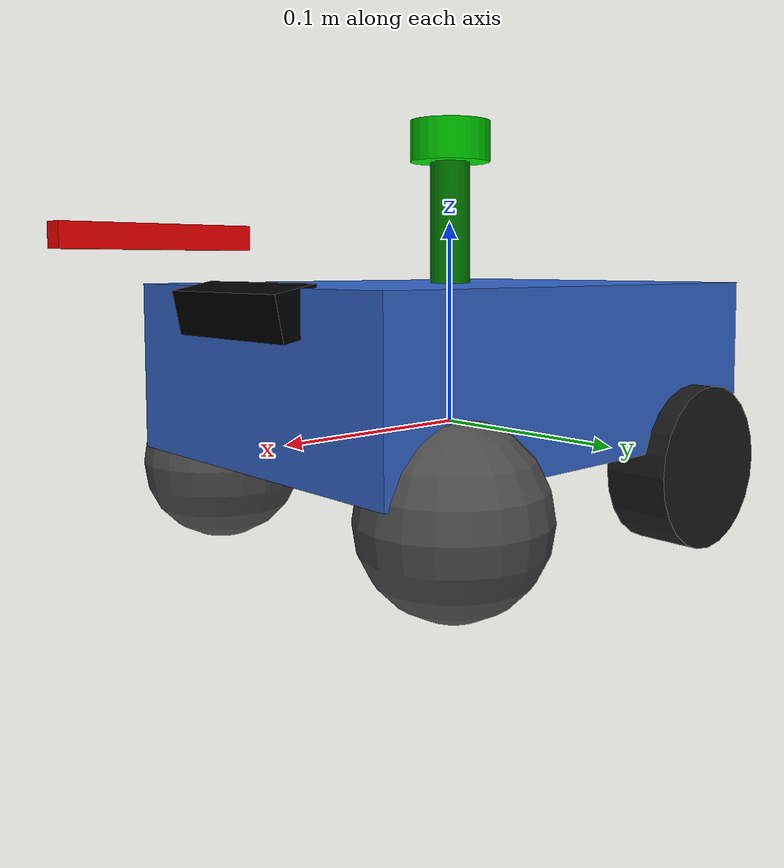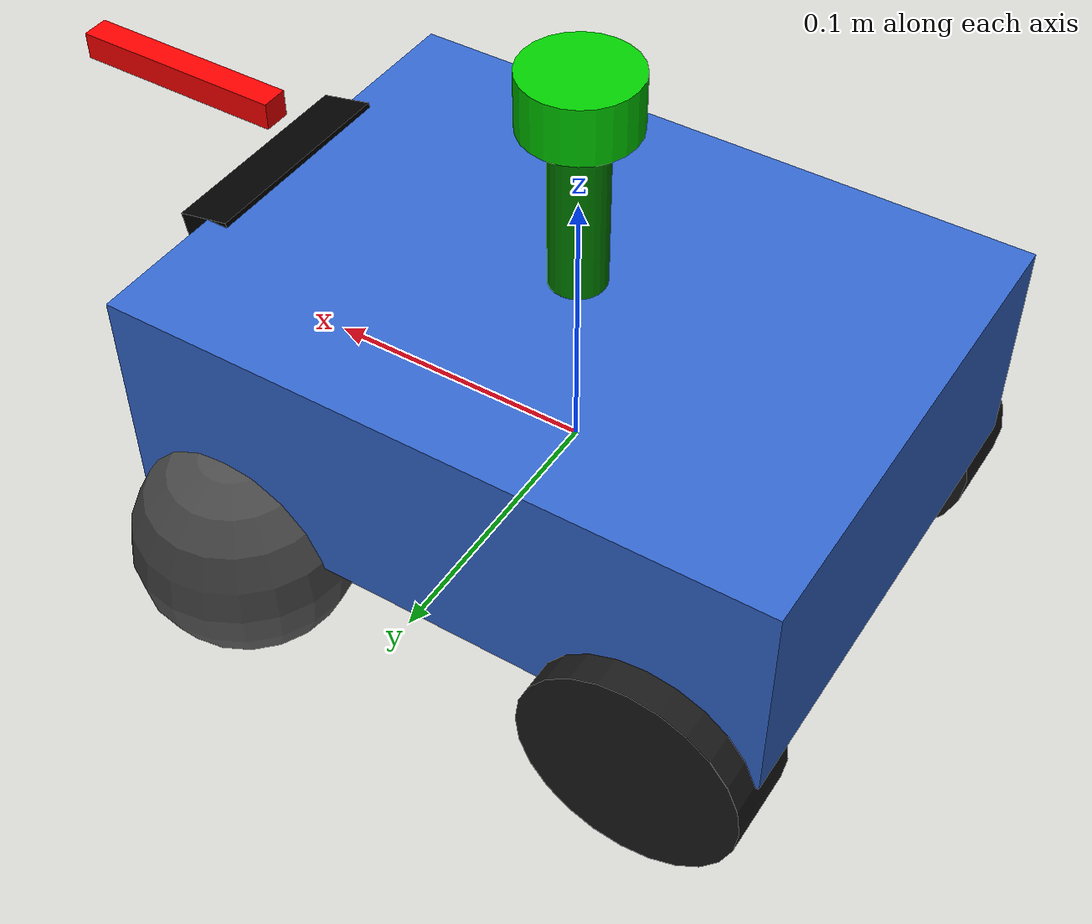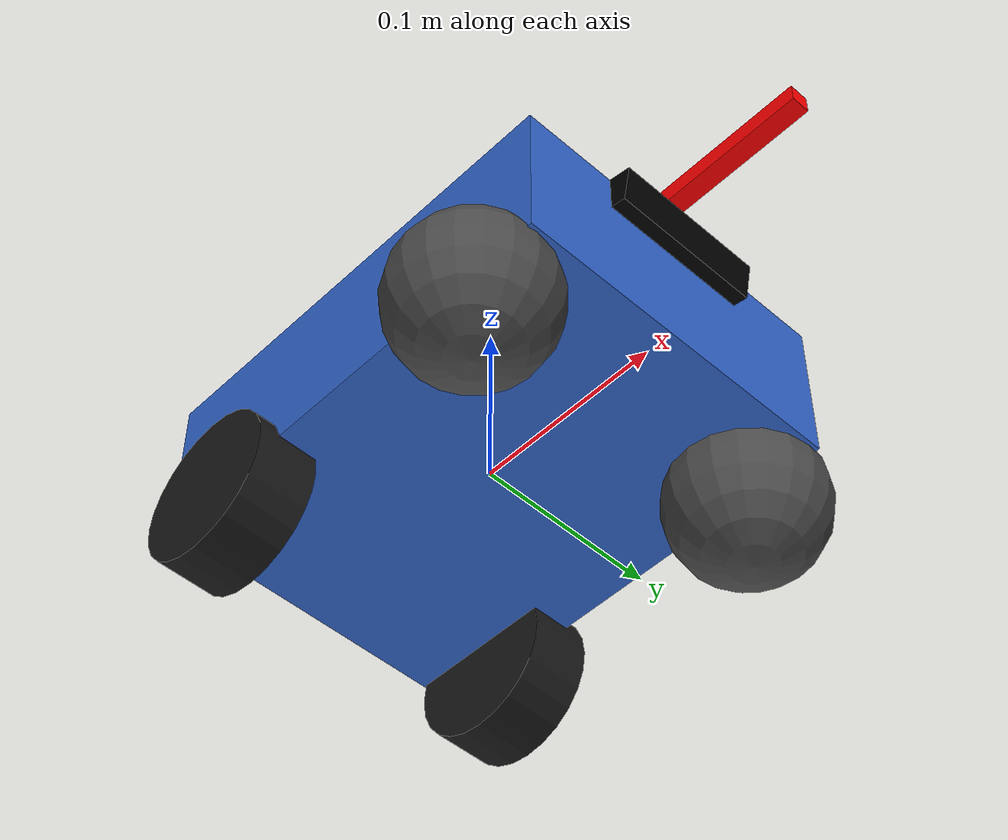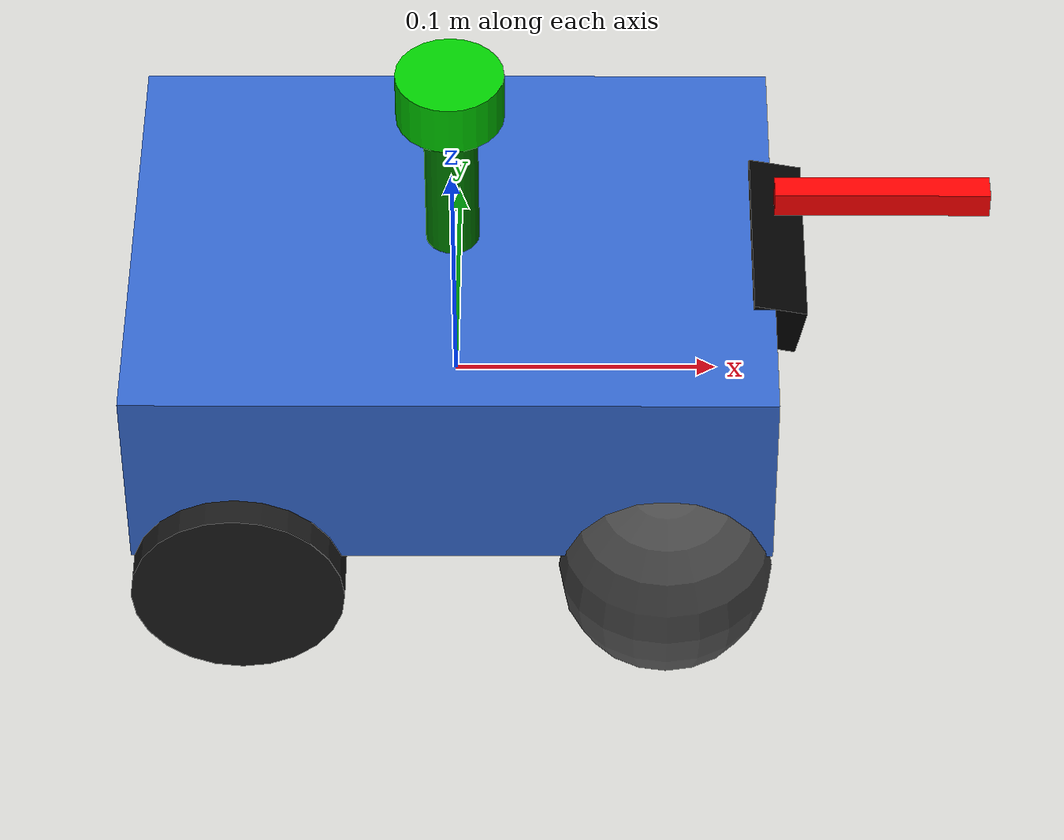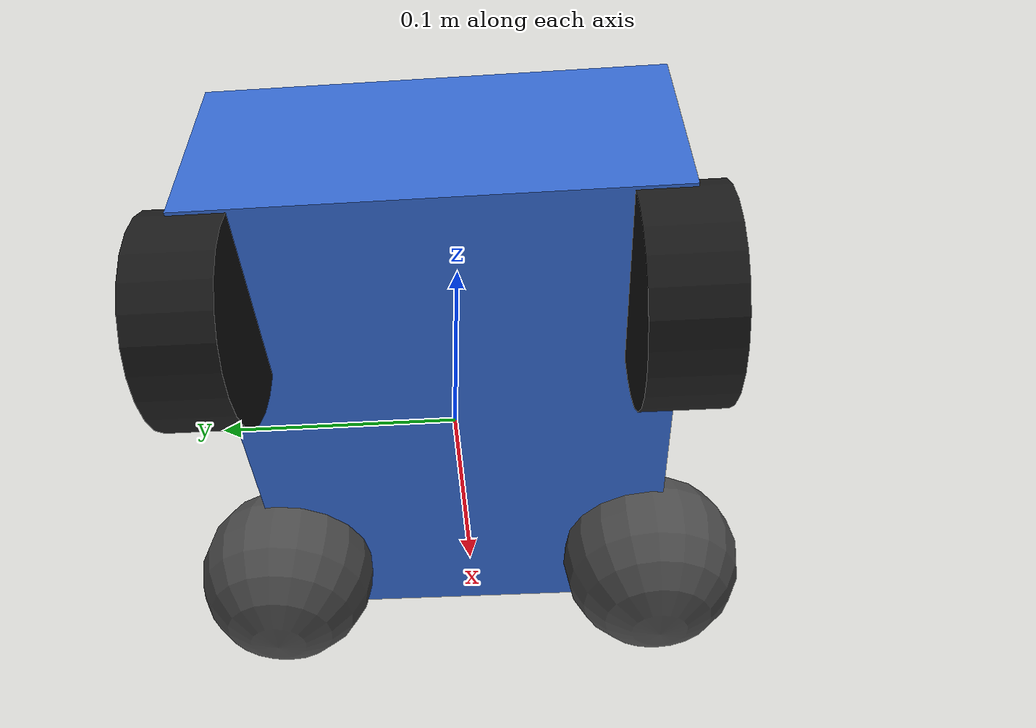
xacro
<?xml version="1.0"?>
<robot xmlns:xacro="http://www.ros.org/wiki/xacro" name="laser_2wd">

    <xacro:include filename="$(find robot_description)/urdf/common/base.xacro"/>
    <xacro:include filename="$(find robot_description)/urdf/common/wheel.xacro"/>
    <xacro:include filename="$(find robot_description)/urdf/common/caster_wheel.xacro"/>

    <xacro:include filename="$(find robot_description)/urdf/controllers/diff_drive_2wd.xacro"/>
    <xacro:include filename="$(find robot_description)/urdf/plugins/gazebo_sensors.xacro"/>

    <xacro:include filename="$(find robot_description)/urdf/sensors/laser_2d.xacro"/>
    <xacro:include filename="$(find robot_description)/urdf/sensors/imu.xacro"/>
    <xacro:include filename="$(find robot_description)/urdf/sensors/mono_camera.xacro"/>

    <!-- 底盘 -->
    <xacro:base com_z="0.03"/>

    <!-- 后轮（驱动轮，continuous joint, mu=1.0） -->
    <xacro:wheel side="rear_left"   pos_x="-0.08" pos_y="0.085"  pos_z="-0.05" joint_type="continuous" mu="1.0"/>
    <xacro:wheel side="rear_right"  pos_x="-0.08" pos_y="-0.085" pos_z="-0.05" joint_type="continuous" mu="1.0"/>

    <!-- 前轮（万向从动轮，球体方案，mu=0.01） -->
    <xacro:caster_wheel side="front_left"  pos_x="0.08" pos_y="0.085"  pos_z="-0.05"/>
    <xacro:caster_wheel side="front_right" pos_x="0.08" pos_y="-0.085" pos_z="-0.05"/>

    <!-- 传感器 -->
    <xacro:laser_2d name="laser" parent="base_link">
        <origin xyz="0.0 0.0 0.06" rpy="0 0 0"/>
    </xacro:laser_2d>
    <xacro:imu name="imu" parent="base_link">
        <origin xyz="0.0 0.0 0.02" rpy="0 0 0"/>
    </xacro:imu>
    <xacro:mono_camera name="camera" parent="base_link">
        <origin xyz="0.12 0.0 0.03" rpy="0 0.2 0"/>
    </xacro:mono_camera>

    <!-- 应用插件 -->
    <xacro:diff_drive_2wd/>
    <xacro:gazebo_sensors/>

</robot>

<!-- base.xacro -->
<robot xmlns:xacro="http://www.ros.org/wiki/xacro">

    <xacro:include filename="$(find robot_description)/urdf/common/common_inertia.xacro"/>

    <!-- 底盘基座（参数化：尺寸、质量、COM高度、摩擦系数） -->
    <xacro:macro name="base" params="
        length:=0.24 width:=0.18 height:=0.08 mass:=1.5
        com_z:=0.03 mu:=0.8
        color_r:=0.2 color_g:=0.4 color_b:=0.8">

        <!-- base_footprint 虚 link -->
        <link name="base_footprint"/>

        <!-- base_link 主底盘 -->
        <joint name="base_joint" type="fixed">
            <parent link="base_footprint"/>
            <child link="base_link"/>
            <origin xyz="0 0 ${com_z}" rpy="0 0 0"/>
        </joint>

        <link name="base_link">
            <visual>
                <origin xyz="0 0 0" rpy="0 0 0"/>
                <geometry>
                    <box size="${length} ${width} ${height}"/>
                </geometry>
                <material name="base_material">
                    <color rgba="${color_r} ${color_g} ${color_b} 1.0"/>
                </material>
            </visual>
            <collision>
                <origin xyz="0 0 0" rpy="0 0 0"/>
                <geometry>
                    <box size="${length} ${width} ${height}"/>
                </geometry>
            </collision>
            <xacro:box_inertia m="${mass}" w="${length}" h="${height}" d="${width}"/>
        </link>

        <gazebo reference="base_link">
            <material>Gazebo/Blue</material>
            <mu1>${mu}</mu1>
            <mu2>${mu}</mu2>
        </gazebo>

        <!-- 前向箭头（视觉指示） -->
        <link name="forward_arrow">
            <visual>
                <geometry>
                    <box size="0.08 0.01 0.01"/>
                </geometry>
                <material name="arrow_material">
                    <color rgba="1.0 0.0 0.0 1.0"/>
                </material>
                <origin xyz="${length/2 + 0.04} 0 ${height/2 + 0.02}" rpy="0 0 0"/>
            </visual>
        </link>
        <joint name="forward_arrow_joint" type="fixed">
            <parent link="base_link"/>
            <child link="forward_arrow"/>
            <origin xyz="0 0 0"/>
        </joint>

    </xacro:macro>

</robot>

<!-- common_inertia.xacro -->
<robot xmlns:xacro="http://ros.org/wiki/xacro">

    <!-- 惯性矩阵计算公式 -->

    <!-- 长方体惯性矩阵 -->
    <xacro:macro name="box_inertia" params="m w h d">
        <inertial>
            <mass value="${m}" />
            <inertia ixx="${(m/12) * (h*h + d*d)}" ixy="0.0" ixz="0.0"
                     iyy="${(m/12) * (w*w + d*d)}" iyz="0.0"
                     izz="${(m/12) * (w*w + h*h)}" />
        </inertial>
    </xacro:macro>

    <!-- 圆柱体惯性矩阵 -->
    <xacro:macro name="cylinder_inertia" params="m r h">
        <inertial>
            <mass value="${m}" />
            <inertia ixx="${(m/12) * (3*r*r + h*h)}" ixy="0" ixz="0"
                     iyy="${(m/12) * (3*r*r + h*h)}" iyz="0"
                     izz="${(m/2) * (r*r)}" />
        </inertial>
    </xacro:macro>

    <!-- 球体惯性矩阵 -->
    <xacro:macro name="sphere_inertia" params="m r">
        <inertial>
            <mass value="${m}" />
            <inertia ixx="${(2/5) * m * (r*r)}" ixy="0.0" ixz="0.0"
                     iyy="${(2/5) * m * (r*r)}" iyz="0.0"
                     izz="${(2/5) * m * (r*r)}" />
        </inertial>
    </xacro:macro>

</robot>

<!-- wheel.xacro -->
<robot xmlns:xacro="http://www.ros.org/wiki/xacro">

    <xacro:include filename="$(find robot_description)/urdf/common/common_inertia.xacro"/>

    <!-- 统一轮子宏（参数化：位置、joint_type、摩擦系数、质量） -->
    <xacro:macro name="wheel" params="
        side pos_x pos_y pos_z
        joint_type:='fixed' mu:=1.0
        radius:=0.04 width:=0.032 mass:=0.1
        has_collision:=true collision_type:='cylinder'">

        <xacro:property name="wheel_name" value="${side}_wheel" />

        <link name="${wheel_name}_link">
            <visual>
                <origin xyz="0 0 0" rpy="1.57079 0 0"/>
                <geometry>
                    <cylinder length="${width}" radius="${radius}"/>
                </geometry>
                <material name="wheel_material">
                    <color rgba="0.1 0.1 0.1 1.0"/>
                </material>
            </visual>

            <xacro:if value="${has_collision}">
            <xacro:if value="${collision_type == 'sphere'}">
            <collision>
                <origin xyz="0 0 0" rpy="0 0 0"/>
                <geometry>
                    <sphere radius="${radius}"/>
                </geometry>
            </collision>
            </xacro:if>
            <xacro:if value="${collision_type == 'cylinder'}">
            <collision>
                <origin xyz="0 0 0" rpy="1.57079 0 0"/>
                <geometry>
                    <cylinder length="${width}" radius="${radius}"/>
                </geometry>
            </collision>
            </xacro:if>
            <xacro:if value="${collision_type == 'none'}">
            </xacro:if>
            </xacro:if>

            <xacro:cylinder_inertia m="${mass}" r="${radius}" h="${width}"/>
        </link>

        <joint name="${wheel_name}_joint" type="${joint_type}">
            <parent link="base_link"/>
            <child link="${wheel_name}_link"/>
            <origin xyz="${pos_x} ${pos_y} ${pos_z}" rpy="0 0 0"/>
            <xacro:if value="${joint_type == 'continuous'}">
                <axis xyz="0 1 0"/>
            </xacro:if>
        </joint>

        <gazebo reference="${wheel_name}_link">
            <material>Gazebo/Black</material>
            <mu1>${mu}</mu1>
            <mu2>${mu}</mu2>
        </gazebo>

    </xacro:macro>

</robot>

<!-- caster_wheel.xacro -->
<robot xmlns:xacro="http://www.ros.org/wiki/xacro">

    <xacro:include filename="$(find robot_description)/urdf/common/common_inertia.xacro"/>

    <!-- 2WD 前轮万向轮（球体方案，mu=0.01 极低摩擦） -->
    <xacro:macro name="caster_wheel" params="
        side pos_x pos_y pos_z
        sphere_radius:=0.04 mass:=0.01 mu:=0.01">

        <xacro:property name="caster_name" value="${side}_caster_wheel" />

        <link name="${caster_name}_link">
            <visual>
                <origin xyz="0 0 0" rpy="0 0 0"/>
                <geometry>
                    <sphere radius="${sphere_radius}"/>
                </geometry>
                <material name="caster_material">
                    <color rgba="0.3 0.3 0.3 1.0"/>
                </material>
            </visual>
            <collision>
                <origin xyz="0 0 0" rpy="0 0 0"/>
                <geometry>
                    <sphere radius="${sphere_radius}"/>
                </geometry>
            </collision>
            <xacro:sphere_inertia m="${mass}" r="${sphere_radius}"/>
        </link>

        <joint name="${caster_name}_joint" type="fixed">
            <parent link="base_link"/>
            <child link="${caster_name}_link"/>
            <origin xyz="${pos_x} ${pos_y} ${pos_z}" rpy="0 0 0"/>
        </joint>

        <gazebo reference="${caster_name}_link">
            <material>Gazebo/Black</material>
            <mu1>${mu}</mu1>
            <mu2>${mu}</mu2>
        </gazebo>

    </xacro:macro>

</robot>

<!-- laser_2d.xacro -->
<robot xmlns:xacro="http://www.ros.org/wiki/xacro">

    <xacro:include filename="$(find robot_description)/urdf/common/common_inertia.xacro"/>

    <!-- =============== 2D 激光雷达 =============== -->
    <xacro:macro name="laser_2d" params="name:='laser' parent:='base_link' *origin">

        <!-- 雷达支撑杆 -->
        <link name="${name}_support_link">
            <visual>
                <origin xyz="0 0 0" rpy="0 0 0"/>
                <geometry>
                    <cylinder length="0.10" radius="0.01"/>
                </geometry>
                <material name="support_material">
                    <color rgba="0.0 0.5 0.0 1.0"/>
                </material>
            </visual>
            <collision>
                <origin xyz="0 0 0" rpy="0 0 0"/>
                <geometry>
                    <cylinder length="0.10" radius="0.01"/>
                </geometry>
                <material name="support_material"/>
            </collision>
            <xacro:cylinder_inertia m="0.01" r="0.01" h="0.10"/>
        </link>

        <joint name="${name}_support_joint" type="fixed">
            <parent link="${parent}"/>
            <child link="${name}_support_link"/>
            <xacro:insert_block name="origin"/>
        </joint>

        <!-- 雷达头 -->
        <link name="${name}_link">
            <visual>
                <origin xyz="0 0 0" rpy="0 0 0"/>
                <geometry>
                    <cylinder length="0.02" radius="0.02"/>
                </geometry>
                <material name="laser_material">
                    <color rgba="0.0 0.8 0.0 1.0"/>
                </material>
            </visual>
            <collision>
                <origin xyz="0 0 0" rpy="0 0 0"/>
                <geometry>
                    <cylinder length="0.02" radius="0.02"/>
                </geometry>
                <material name="laser_material"/>
            </collision>
            <xacro:cylinder_inertia m="0.03" r="0.02" h="0.02"/>
        </link>

        <joint name="${name}_joint" type="fixed">
            <parent link="${name}_support_link"/>
            <child link="${name}_link"/>
            <origin xyz="0 0 0.05" rpy="0 0 0"/>
        </joint>

        <!-- Gazebo 传感器插件 -->
        <gazebo reference="${name}_link">
            <sensor type="ray" name="${name}_sensor">
                <plugin name="${name}_plugin" filename="libgazebo_ros_ray_sensor.so">
                    <ros>
                        <namespace>/</namespace>
                        <remapping>~/out:=/scan</remapping>
                    </ros>
                    <output_type>sensor_msgs/LaserScan</output_type>
                    <frame_name>${name}_link</frame_name>
                    <range_max>10.0</range_max>
                    <range_min>0.12</range_min>
                </plugin>
                <always_on>true</always_on>
                <visualize>true</visualize>
                <update_rate>10</update_rate>
                <pose>0 0 0 0 0 0</pose>
                <ray>
                    <scan>
                        <horizontal>
                            <samples>360</samples>
                            <resolution>1.0</resolution>
                            <min_angle>-3.14159</min_angle>
                            <max_angle>3.14159</max_angle>
                        </horizontal>
                    </scan>
                    <range>
                        <min>0.12</min>
                        <max>10.0</max>
                        <resolution>0.015</resolution>
                    </range>
                    <noise>
                        <type>gaussian</type>
                        <mean>0.0</mean>
                        <stddev>0.01</stddev>
                    </noise>
                </ray>
            </sensor>
        </gazebo>

    </xacro:macro>

</robot>

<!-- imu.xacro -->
<robot xmlns:xacro="http://www.ros.org/wiki/xacro">

    <xacro:include filename="$(find robot_description)/urdf/common/common_inertia.xacro"/>

    <!-- =============== IMU 传感器 =============== -->
    <xacro:macro name="imu" params="name:='imu' parent:='base_link' *origin">

        <link name="${name}_link">
            <visual>
                <origin xyz="0 0 0" rpy="0 0 0"/>
                <geometry>
                    <box size="0.02 0.02 0.02"/>
                </geometry>
                <material name="imu_material">
                    <color rgba="0.0 0.0 0.0 1.0"/>
                </material>
            </visual>
            <collision>
                <origin xyz="0 0 0" rpy="0 0 0"/>
                <geometry>
                    <box size="0.02 0.02 0.02"/>
                </geometry>
                <material name="imu_material"/>
            </collision>
            <xacro:box_inertia m="0.01" w="0.02" h="0.02" d="0.02"/>
        </link>

        <joint name="${name}_joint" type="fixed">
            <parent link="${parent}"/>
            <child link="${name}_link"/>
            <xacro:insert_block name="origin"/>
        </joint>

        <!-- Gazebo IMU 插件 -->
        <gazebo reference="${name}_link">
            <sensor name="${name}_sensor" type="imu">
                <plugin name="${name}_plugin" filename="libgazebo_ros_imu_sensor.so">
                    <ros>
                        <namespace>/</namespace>
                        <remapping>~/out:=/imu/data</remapping>
                    </ros>
                    <initial_orientation_as_reference>false</initial_orientation_as_reference>
                </plugin>
                <update_rate>100</update_rate>
                <always_on>true</always_on>
                <imu>
                    <angular_velocity>
                        <x>
                            <noise type="gaussian">
                                <mean>0.0</mean>
                                <stddev>2e-4</stddev>
                                <bias_mean>0.0000075</bias_mean>
                                <bias_stddev>0.0000008</bias_stddev>
                            </noise>
                        </x>
                        <y>
                            <noise type="gaussian">
                                <mean>0.0</mean>
                                <stddev>2e-4</stddev>
                                <bias_mean>0.0000075</bias_mean>
                                <bias_stddev>0.0000008</bias_stddev>
                            </noise>
                        </y>
                        <z>
                            <noise type="gaussian">
                                <mean>0.0</mean>
                                <stddev>2e-4</stddev>
                                <bias_mean>0.0000075</bias_mean>
                                <bias_stddev>0.0000008</bias_stddev>
                            </noise>
                        </z>
                    </angular_velocity>
                    <linear_acceleration>
                        <x>
                            <noise type="gaussian">
                                <mean>0.0</mean>
                                <stddev>1.7e-2</stddev>
                                <bias_mean>0.1</bias_mean>
                                <bias_stddev>0.001</bias_stddev>
                            </noise>
                        </x>
                        <y>
                            <noise type="gaussian">
                                <mean>0.0</mean>
                                <stddev>1.7e-2</stddev>
                                <bias_mean>0.1</bias_mean>
                                <bias_stddev>0.001</bias_stddev>
                            </noise>
                        </y>
                        <z>
                            <noise type="gaussian">
                                <mean>0.0</mean>
                                <stddev>1.7e-2</stddev>
                                <bias_mean>0.1</bias_mean>
                                <bias_stddev>0.001</bias_stddev>
                            </noise>
                        </z>
                    </linear_acceleration>
                </imu>
            </sensor>
        </gazebo>

    </xacro:macro>

</robot>

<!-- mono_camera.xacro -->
<robot xmlns:xacro="http://www.ros.org/wiki/xacro">

    <xacro:include filename="$(find robot_description)/urdf/common/common_inertia.xacro"/>

    <!-- =============== 单目相机 =============== -->
    <xacro:macro name="mono_camera" params="name:='camera' parent:='base_link' *origin">

        <!-- 相机本体 -->
        <link name="${name}_link">
            <visual>
                <origin xyz="0 0 0" rpy="0 0 0"/>
                <geometry>
                    <box size="0.02 0.08 0.02"/>
                </geometry>
                <material name="camera_material">
                    <color rgba="0.0 0.0 0.0 1.0"/>
                </material>
            </visual>
            <collision>
                <origin xyz="0 0 0" rpy="0 0 0"/>
                <geometry>
                    <box size="0.02 0.08 0.02"/>
                </geometry>
                <material name="camera_material"/>
            </collision>
            <xacro:box_inertia m="0.01" w="0.02" h="0.08" d="0.02"/>
        </link>

        <joint name="${name}_joint" type="fixed">
            <parent link="${parent}"/>
            <child link="${name}_link"/>
            <xacro:insert_block name="origin"/>
        </joint>

        <!-- 相机光学坐标系 -->
        <link name="${name}_optical_link"/>
        <joint name="${name}_optical_joint" type="fixed">
            <parent link="${name}_link"/>
            <child link="${name}_optical_link"/>
            <origin xyz="0 0 0" rpy="-1.57079 0 -1.57079"/>
        </joint>

        <!-- Gazebo 相机插件 -->
        <gazebo reference="${name}_link">
            <sensor type="camera" name="${name}_sensor">
                <plugin name="${name}_plugin" filename="libgazebo_ros_camera.so">
                    <ros>
                        <namespace>/</namespace>
                        <remapping>image_raw:=/${name}/image_raw</remapping>
                        <remapping>camera_info:=/${name}/camera_info</remapping>
                    </ros>
                    <frame_name>${name}_optical_link</frame_name>
                    <hack_baseline>0.0</hack_baseline>
                </plugin>
                <always_on>true</always_on>
                <update_rate>30</update_rate>
                <camera name="${name}">
                    <horizontal_fov>1.08559</horizontal_fov>
                    <image>
                        <width>640</width>
                        <height>480</height>
                        <format>R8G8B8</format>
                    </image>
                    <clip>
                        <near>0.1</near>
                        <far>100.0</far>
                    </clip>
                    <distortion>
                        <k1>0.0</k1>
                        <k2>0.0</k2>
                        <k3>0.0</k3>
                        <p1>0.0</p1>
                        <p2>0.0</p2>
                    </distortion>
                </camera>
            </sensor>
        </gazebo>

    </xacro:macro>

</robot>
